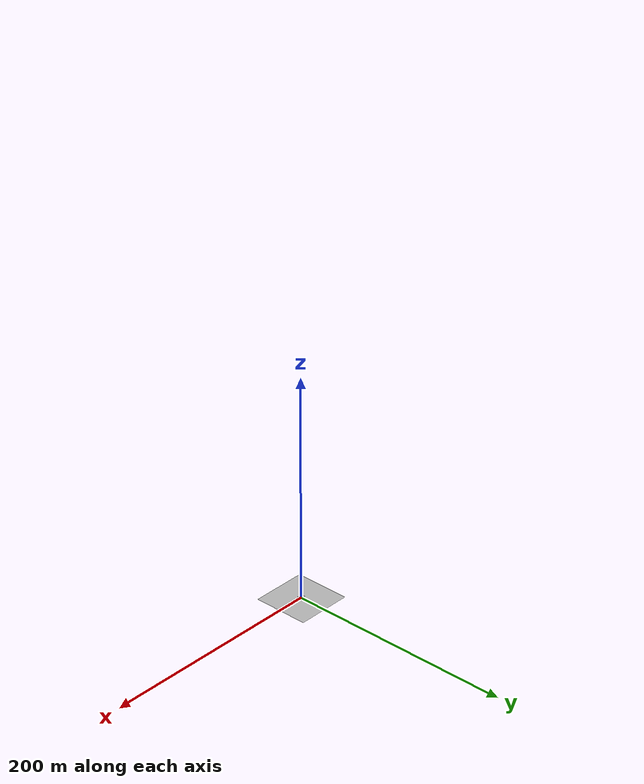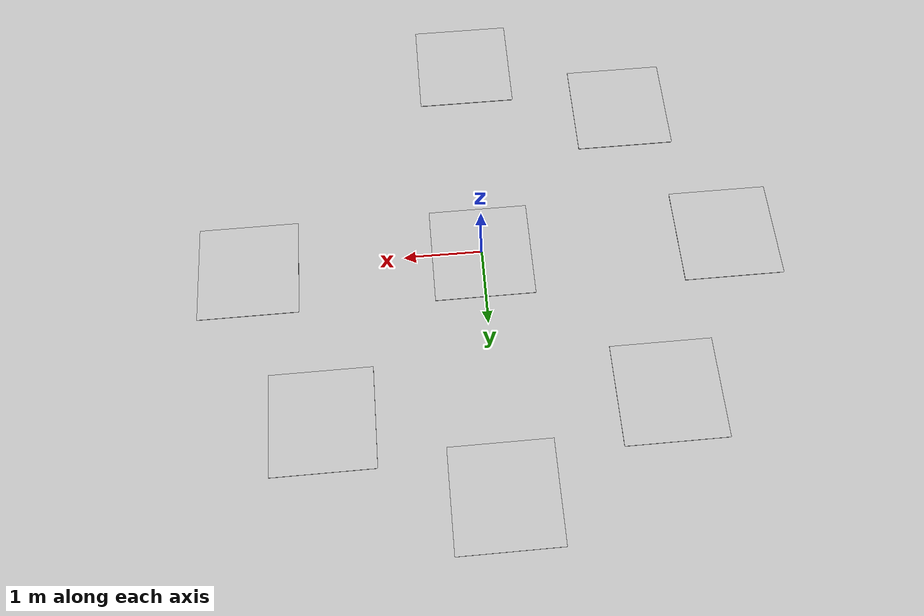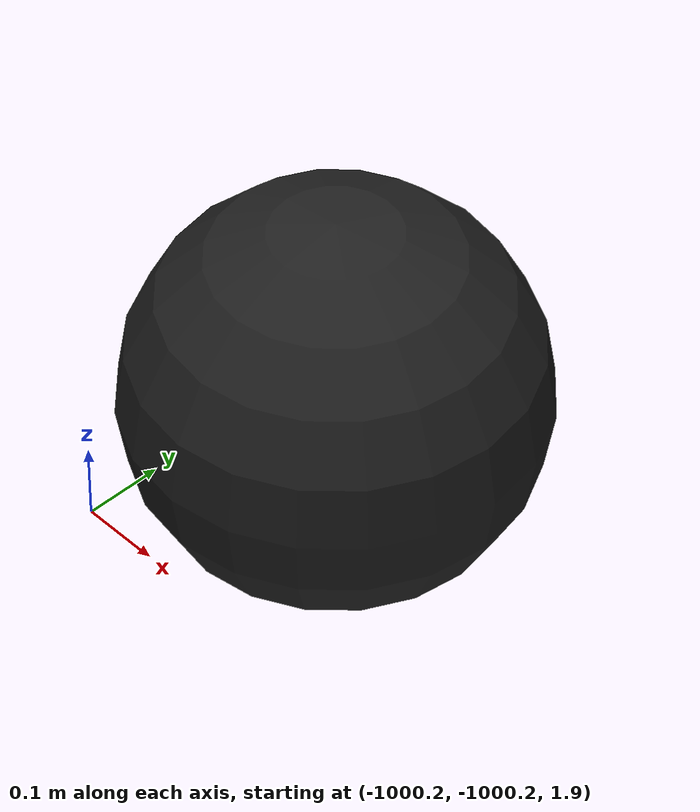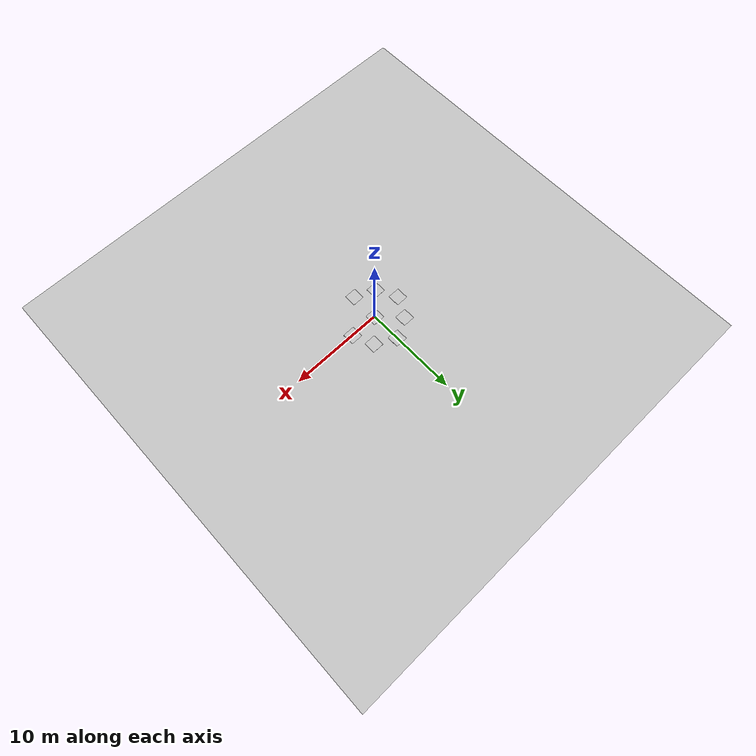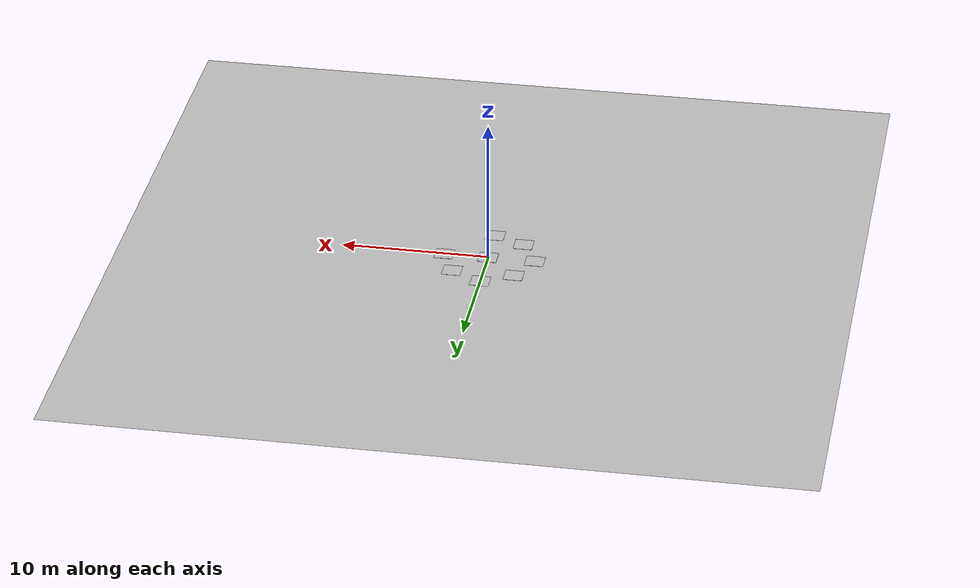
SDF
<?xml version="1.0" ?>
<sdf version="1.10">
  <world name="sae3">
    <physics type="ode">
      <max_step_size>0.004</max_step_size>
      <real_time_factor>1.0</real_time_factor>
      <real_time_update_rate>250</real_time_update_rate>
    </physics>

    <plugin name="gz::sim::systems::Physics" filename="gz-sim-physics-system"/>
    <plugin name="gz::sim::systems::UserCommands" filename="gz-sim-user-commands-system"/>
    <plugin name="gz::sim::systems::SceneBroadcaster" filename="gz-sim-scene-broadcaster-system"/>
    <plugin name="gz::sim::systems::Contact" filename="gz-sim-contact-system"/>
    <plugin name="gz::sim::systems::Imu" filename="gz-sim-imu-system"/>
    <plugin name="gz::sim::systems::AirPressure" filename="gz-sim-air-pressure-system"/>
    <plugin name="gz::sim::systems::ApplyLinkWrench" filename="gz-sim-apply-link-wrench-system"/>
    <plugin name="gz::sim::systems::NavSat" filename="gz-sim-navsat-system"/>
    <plugin name="gz::sim::systems::Sensors" filename="gz-sim-sensors-system">
      <render_engine>ogre2</render_engine>
    </plugin>

    <gravity>0 0 -9.8</gravity>
    <magnetic_field>6e-06 2.3e-05 -4.2e-05</magnetic_field>
    <atmosphere type="adiabatic"/>
    <spherical_coordinates>
      <surface_model>EARTH_WGS84</surface_model>
      <world_frame_orientation>ENU</world_frame_orientation>
      <latitude_deg>-23.203008</latitude_deg>
      <longitude_deg>-45.874897</longitude_deg>
      <elevation>0</elevation>
    </spherical_coordinates>
    <scene>
      <ambient>0.4 0.4 0.4 1</ambient>
      <background>0.7 0.7 0.7 1</background>
      <shadows>true</shadows>
      <sky>
        <clouds />
      </sky>
    </scene>

    <light type="directional" name="sun">
      <cast_shadows>true</cast_shadows>
      <pose>0 0 20 0 0 0</pose>
      <ambient>0.8 0.8 0.8 1</ambient>
      <diffuse>1.0 1.0 1.0 1</diffuse>
      <specular>0.2 0.2 0.2 1</specular>
      <attenuation>
        <range>1000</range>
        <constant>0.9</constant>
        <linear>0.01</linear>
        <quadratic>0.001</quadratic>
      </attenuation>
      <direction>-0.5 0.1 -0.9</direction>
    </light>

    <!-- ground plane {-->
    <model name="ground_plane">
      <static>true</static>
      <link name="link">
        <collision name="collision">
          <pose>0 0 0 0 0 0</pose>
          <geometry>
            <plane>
              <normal>0 0 1</normal>
              <size>250 250</size>
            </plane>
          </geometry>
          <surface>
            <friction>
              <ode>
                <mu>1</mu>
                <mu2>1</mu2>
              </ode>
            </friction>
          </surface>
        </collision>
        <visual name="grass">
          <pose>0 0 0 0 0 0</pose>
          <cast_shadows>false</cast_shadows>
          <geometry>
            <mesh>
              <uri>file://grass_plane/meshes/grass_plane.dae</uri>
            </mesh>
          </geometry>
        </visual>
      </link>
    </model>

    <!-- THE VOID (for spawning objects out of camera view) {-->
    <model name='the_void'>
      <static>1</static>
      <link name='link'>
        <pose frame=''>0 0 0.1 0 -0 0</pose>
        <visual name='the_void'>
          <pose frame=''>0 0 2 0 -0 0</pose>
          <geometry>
            <sphere>
              <radius>0.25</radius>
            </sphere>
          </geometry>
          <material>
            <script>
              <uri>file://media/materials/scripts/Gazebo.material</uri>
              <name>Gazebo/Black</name>
            </script>
          </material>
        </visual>
        <self_collide>0</self_collide>
        <enable_wind>0</enable_wind>
        <kinematic>0</kinematic>
      </link>
      <pose frame=''>-1000 -1000 0 0 0 0</pose>
    </model>

    <!-- user camera {-->
    <gui>
      <camera name="camera">
        <pose>-4 -4 7 0 0.4 0.89</pose>
      </camera>
    </gui>

     <!--VOU COMENTAR O SUN E O GROUND_PLANE PQ TA DANDO PROBLEMA-->
    <!-- Models Worlds -->

    <!-- PLATAFORMAS -->
    <!-- Plataforma central -->
    <model name="plataforma_circulo">
      <include>
        <uri>model://sae/plataforma_circulo</uri>
        <pose>0.0 0.0 0 1.5708 0 0</pose>
      </include>
      <scale>0.5 0.5 0.5</scale>
    </model>

    <!-- Obstáculos ao redor -->
    <model name="plataforma_quadrado">
      <include>
        <uri>model://sae/plataforma_quadrado</uri>
        <pose>3.0 0.0 0 1.5708 0 0</pose>
      </include>
      <scale>0.5 0.5 0.5</scale>
    </model>

    <model name="plataforma_triangulo">
      <include>
        <uri>model://sae/plataforma_triangulo</uri>
        <pose>2.1 2.1 0 1.5708 0 0</pose>
      </include>
      <scale>0.5 0.5 0.5</scale>
    </model>

    <model name="plataforma_hexagono">
      <include>
        <uri>model://sae/plataforma_hexagono</uri>
        <pose>0.0 3.2 0 1.5708 0 0</pose>
      </include>
      <scale>0.5 0.5 0.5</scale>
    </model>

    <model name="plataforma_pentagono">
      <include>
        <uri>model://sae/plataforma_pentagono</uri>
        <pose>-2.1 2.1 0 1.5708 0 0</pose>
      </include>
      <scale>0.5 0.5 0.5</scale>
    </model>

    <model name="plataforma_estrela">
      <include>
        <uri>model://sae/plataforma_estrela</uri>
        <pose>-3.2 0.0 0 1.5708 0 0</pose>
      </include>
      <scale>0.5 0.5 0.5</scale>
    </model>

    <model name="plataforma_cruz">
      <include>
        <uri>model://sae/plataforma_cruz</uri>
        <pose>-2.1 -2.1 0 1.5708 0 0</pose>
      </include>
      <scale>0.5 0.5 0.5</scale>
    </model>

    <model name="plataforma_casa">
      <include>
        <uri>model://sae/plataforma_casa</uri>
        <pose>0.0 -3.0 0 1.5708 0 0</pose>
      </include>
      <scale>0.5 0.5 0.5</scale>
    </model>

  </world>
</sdf>

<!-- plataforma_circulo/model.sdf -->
<sdf version="1.10">
  <model name="plataforma_circulo">
    <static>true</static>
    <link name="base_link">
      <visual name="visual">
        <geometry>
          <mesh>
            <uri>model://sae/plataforma_circulo/meshes/plataforma_circulo.obj</uri>
            <scale>0.8 0.8 0.8</scale>
          </mesh>
        </geometry>
      </visual>
      <collision name="collision">
        <geometry>
          <mesh>
            <uri>model://sae/plataforma_circulo/meshes/plataforma_circulo.obj</uri>
            <scale>0.8 0.8 0.8 </scale>
          </mesh>
        </geometry>
      </collision>
    </link>
  </model>
</sdf>

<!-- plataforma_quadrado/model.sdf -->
<sdf version="1.10">
  <model name="plataforma_circulo">
    <static>true</static>
    <link name="base_link">
      <visual name="visual">
        <geometry>
          <mesh>
            <uri>model://sae/plataforma_quadrado/meshes/plataforma_quadrado.obj</uri>
            <scale>0.8 0.8 0.8</scale>
          </mesh>
        </geometry>
      </visual>
      <collision name="collision">
        <geometry>
          <mesh>
            <uri>model://sae/plataforma_quadrado/meshes/plataforma_quadrado.obj</uri>
            <scale>0.8 0.8 0.8 </scale>
          </mesh>
        </geometry>
      </collision>
    </link>
  </model>
</sdf>

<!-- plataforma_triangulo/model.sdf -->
<sdf version="1.10">
  <model name="plataforma_triangulo">
    <static>true</static>
    <link name="base_link">
      <visual name="visual">
        <geometry>
          <mesh>
            <uri>model://sae/plataforma_triangulo/meshes/plataforma_triangulo.obj</uri>
            <scale>0.8 0.8 0.8</scale>
          </mesh>
        </geometry>
      </visual>
      <collision name="collision">
        <geometry>
          <mesh>
            <uri>model://sae/plataforma_triangulo/meshes/plataforma_triangulo.obj</uri>
            <scale>0.8 0.8 0.8 </scale>
          </mesh>
        </geometry>
      </collision>
    </link>
  </model>
</sdf>

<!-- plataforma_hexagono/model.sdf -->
<sdf version="1.10">
  <model name="plataforma_hexagono">
    <static>true</static>
    <link name="base_link">
      <visual name="visual">
        <geometry>
          <mesh>
            <uri>model://sae/plataforma_hexagono/meshes/plataforma_hexagono.obj</uri>
            <scale>0.8 0.8 0.8</scale>
          </mesh>
        </geometry>
      </visual>
      <collision name="collision">
        <geometry>
          <mesh>
            <uri>model://sae/plataforma_hexagono/meshes/plataforma_hexagono.obj</uri>
            <scale>0.8 0.8 0.8 </scale>
          </mesh>
        </geometry>
      </collision>
    </link>
  </model>
</sdf>

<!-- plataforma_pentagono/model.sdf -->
<sdf version="1.10">
  <model name="plataforma_pentagono">
    <static>true</static>
    <link name="base_link">
      <visual name="visual">
        <geometry>
          <mesh>
            <uri>model://sae/plataforma_pentagono/meshes/plataforma_pentagono.obj</uri>
            <scale>0.8 0.8 0.8</scale>
          </mesh>
        </geometry>
      </visual>
      <collision name="collision">
        <geometry>
          <mesh>
            <uri>model://sae/plataforma_pentagono/meshes/plataforma_pentagono.obj</uri>
            <scale>0.8 0.8 0.8 </scale>
          </mesh>
        </geometry>
      </collision>
    </link>
  </model>
</sdf>

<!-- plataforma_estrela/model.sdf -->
<sdf version="1.10">
  <model name="plataforma_circulo">
    <static>true</static>
    <link name="base_link">
      <visual name="visual">
        <geometry>
          <mesh>
            <uri>model://sae/plataforma_estrela/meshes/plataforma_estrela.obj</uri>
            <scale>0.8 0.8 0.8</scale>
          </mesh>
        </geometry>
      </visual>
      <collision name="collision">
        <geometry>
          <mesh>
            <uri>model://sae/plataforma_estrela/meshes/plataforma_estrela.obj</uri>
            <scale>0.8 0.8 0.8 </scale>
          </mesh>
        </geometry>
      </collision>
    </link>
  </model>
</sdf>

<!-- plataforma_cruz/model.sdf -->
<sdf version="1.10">
  <model name="plataforma_cruz">
    <static>true</static>
    <link name="base_link">
      <visual name="visual">
        <geometry>
          <mesh>
            <uri>model://sae/plataforma_cruz/meshes/plataforma_cruz.obj</uri>
            <scale>0.8 0.8 0.8</scale>
          </mesh>
        </geometry>
      </visual>
      <collision name="collision">
        <geometry>
          <mesh>
            <uri>model://sae/plataforma_cruz/meshes/plataforma_cruz.obj</uri>
            <scale>0.8 0.8 0.8 </scale>
          </mesh>
        </geometry>
      </collision>
    </link>
  </model>
</sdf>

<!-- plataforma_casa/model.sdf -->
<sdf version="1.10">
  <model name="plataforma_casa">
    <static>true</static>
    <link name="base_link">
      <visual name="visual">
        <geometry>
          <mesh>
            <uri>model://sae/plataforma_casa/meshes/plataforma_casa.obj</uri>
            <scale>0.8 0.8 0.8</scale>
          </mesh>
        </geometry>
      </visual>
      <collision name="collision">
        <geometry>
          <mesh>
            <uri>model://sae/plataforma_casa/meshes/plataforma_casa.obj</uri>
            <scale>0.8 0.8 0.8 </scale>
          </mesh>
        </geometry>
      </collision>
    </link>
  </model>
</sdf>
